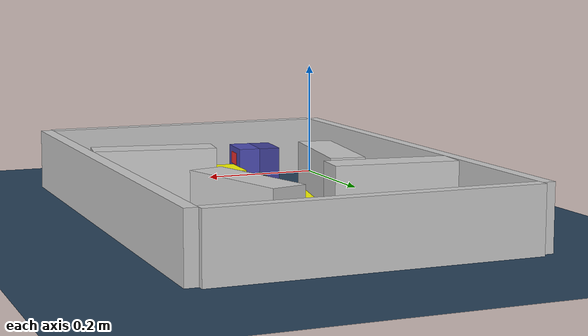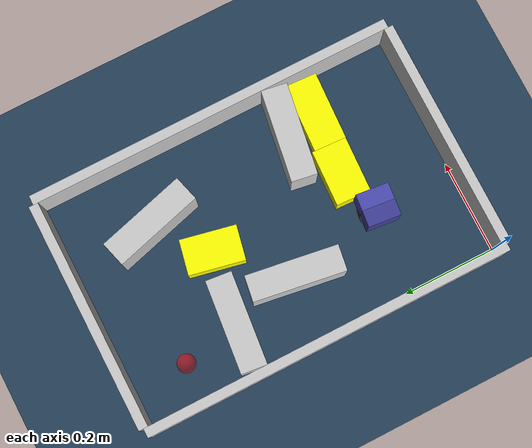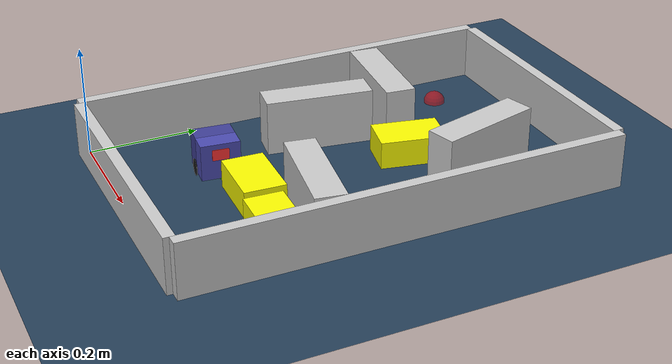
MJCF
<?xml version='1.0' encoding='utf-8'?>
<mujoco model="real_buildable">
  <compiler angle="degree" />
  <option timestep="0.002" integrator="implicitfast" iterations="100" cone="elliptic" />
  <default>
    <geom density="1" />
  </default>
  <asset>
    <texture builtin="gradient" height="3072" rgb1="0.3 0.5 0.7" rgb2="0 0 0" type="skybox" width="512" />
    <texture builtin="checker" height="300" mark="edge" markrgb="0.8 0.8 0.8" name="groundplane" rgb1="0.2 0.3 0.4" rgb2="0.1 0.2 0.3" type="2d" width="300" />
    <material name="groundplane" reflectance="0.2" texrepeat="5 5" texture="groundplane" texuniform="true" />
  </asset>
  <worldbody>
    <light dir="0 0 -1" directional="true" pos="0 0 1.5" />
    <geom name="floor" type="plane" condim="4" friction="0.5 0.005 0.001" material="groundplane" size="0 0 0.05" />
    <body name="walls">
      <geom name="wall_boundary_left" type="box" condim="4" friction="1.0 0.005 0.0001" rgba="0.8 0.8 0.8 1" pos="-0.010000 0.387500 0.050000" euler="0 0 0.000000" size="0.010000 0.397500 0.050000" />
      <geom name="wall_boundary_right" type="box" condim="4" friction="1.0 0.005 0.0001" rgba="0.8 0.8 0.8 1" pos="0.500000 0.387500 0.050000" euler="0 0 0.000000" size="0.010000 0.397500 0.050000" />
      <geom name="wall_boundary_bottom" type="box" condim="4" friction="1.0 0.005 0.0001" rgba="0.8 0.8 0.8 1" pos="0.245000 -0.010000 0.050000" euler="0 0 0.000000" size="0.245000 0.010000 0.050000" />
      <geom name="wall_boundary_top" type="box" condim="4" friction="1.0 0.005 0.0001" rgba="0.8 0.8 0.8 1" pos="0.245000 0.785000 0.050000" euler="0 0 0.000000" size="0.245000 0.010000 0.050000" />
      <geom name="wall_inner_1" type="box" condim="4" friction="1.0 0.005 0.0001" rgba="0.8 0.8 0.8 1" pos="0.389390 0.267798 0.050000" euler="0 0 -9.038645" size="0.097500 0.027500 0.050000" />
      <geom name="wall_inner_2" type="box" condim="4" friction="1.0 0.005 0.0001" rgba="0.8 0.8 0.8 1" pos="0.132654 0.386147 0.050000" euler="0 0 81.378246" size="0.097500 0.027500 0.050000" />
      <geom name="wall_inner_3" type="box" condim="4" friction="1.0 0.005 0.0001" rgba="0.8 0.8 0.8 1" pos="0.100000 0.534000 0.050000" euler="0 0 174.100000" size="0.097500 0.027500 0.050000" />
      <geom name="wall_inner_4" type="box" condim="4" friction="1.0 0.005 0.0001" rgba="0.8 0.8 0.8 1" pos="0.356000 0.595000 0.050000" euler="0 0 105.500000" size="0.097500 0.027500 0.050000" />
    </body>
    <body name="car" pos="0.18041596918843991 0.17529816228558737 0.01" quat="0.99865195504967619 0 0 -0.051906383764037611">
      <freejoint name="car_freejoint" />
      <inertial pos="0 0 0.0375" mass="0.35" diaginertia="0.000266 0.000266 0.000286" />
      <geom name="front_chassis_collision" type="box" pos="0.0175 0 0.0375" size="0.0175 0.035 0.0325" rgba="0.3 0.3 0.7 1" />
      <geom name="rear_chassis_collision" type="box" pos="-0.0175 0 0.0375" size="0.0175 0.035 0.0325" rgba="0.25 0.25 0.6 1" />
      <geom name="front_marker" type="box" pos="0.034 0 0.0505" size="0.002 0.015 0.01" rgba="1 0.2 0.2 1" contype="0" conaffinity="0" />
      <body name="rear_support_body" pos="-0.03 0 0.0025">
        <joint name="rear_caster_joint" type="ball" damping="0.0001" />
        <inertial pos="0 0 0" mass="0.025" diaginertia="0.000001 0.000001 0.000001" />
        <geom name="rear_support" type="sphere" pos="0 0 0" size="0.0025" friction="0 0 0" rgba="0.7 0.1 0.1 1" />
      </body>
      <body name="front_support_body" pos="0.03 0 0.0025">
        <joint name="front_caster_joint" type="ball" damping="0.0001" />
        <inertial pos="0 0 0" mass="0.025" diaginertia="0.000001 0.000001 0.000001" />
        <geom name="front_support" type="sphere" pos="0 0 0" size="0.0025" friction="0 0 0" rgba="0.1 0.7 0.1 1" />
      </body>
      <body name="left_wheel" pos="0 0.0375 0.015">
        <inertial pos="0 0 0" mass="0.05" diaginertia="0.000003 0.000006 0.000003" />
        <joint name="left_wheel_joint" type="hinge" axis="0 1 0" damping="0.01" armature="0.0001" />
        <geom name="left_wheel_collision" type="cylinder" size="0.015 0.0005" euler="90 0 0" rgba="0.1 0.1 0.1 1" />
      </body>
      <body name="right_wheel" pos="0 -0.0375 0.015">
        <inertial pos="0 0 0" mass="0.05" diaginertia="0.000003 0.000006 0.000003" />
        <joint name="right_wheel_joint" type="hinge" axis="0 1 0" damping="0.01" armature="0.0001" />
        <geom name="right_wheel_collision" type="cylinder" size="0.015 0.0005" euler="90 0 0" rgba="0.1 0.1 0.1 1" />
      </body>
    </body>
    <body name="obstacle_0_movable">
      <geom name="obstacle_0_movable" condim="4" pos="0.27896933344363523 0.20509723581829759 0.025000000000000001" friction="1 0.005 0.0001" rgba="1 1 0 1" size="0.037500 0.060000 0.025000" type="box" mass="0.1" quat="0.72354760411706076 0 0 0.69027448495251598" />
      <joint type="free" />
    </body>
    <body name="obstacle_1_movable">
      <geom name="obstacle_1_movable" condim="4" pos="0.25499999999999956 0.50999999999999956 0.025000000000000001" friction="1 0.005 0.0001" rgba="1 1 0 1" size="0.037500 0.060000 0.025000" type="box" mass="0.1" quat="0.99470281711717423 0 0 -0.10279253678724681" />
      <joint type="free" />
    </body>
    <body name="obstacle_2_movable">
      <geom name="obstacle_2_movable" condim="4" pos="0.4135287081219764 0.19374246572177706 0.02" friction="1 0.005 0.0001" rgba="1 1 0 1" size="0.035000 0.075000 0.020000" type="box" mass="0.1" quat="0.72474300128225322 0 0 0.68901929007277585" />
      <joint type="free" />
    </body>
    <site name="goal" type="sphere" pos="0.080000 0.660000 0.0" size="0.02" rgba="1 0 0 0.5" />
  </worldbody>
  <actuator>
    <velocity name="left_wheel_drive" joint="left_wheel_joint" ctrlrange="-25 25" kv="0.75" forcerange="-0.5 0.5" />
    <velocity name="right_wheel_drive" joint="right_wheel_joint" ctrlrange="-25 25" kv="0.75" forcerange="-0.5 0.5" />
  </actuator>
</mujoco>
